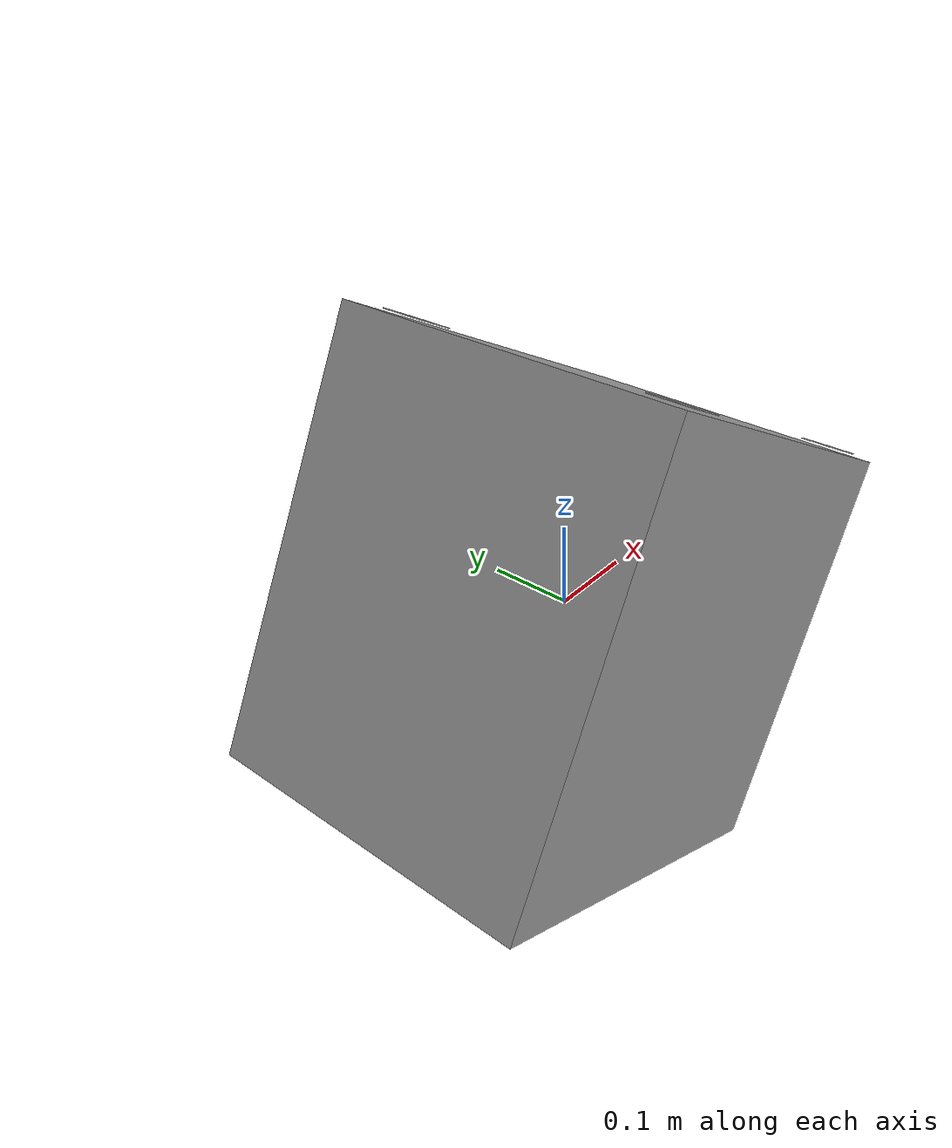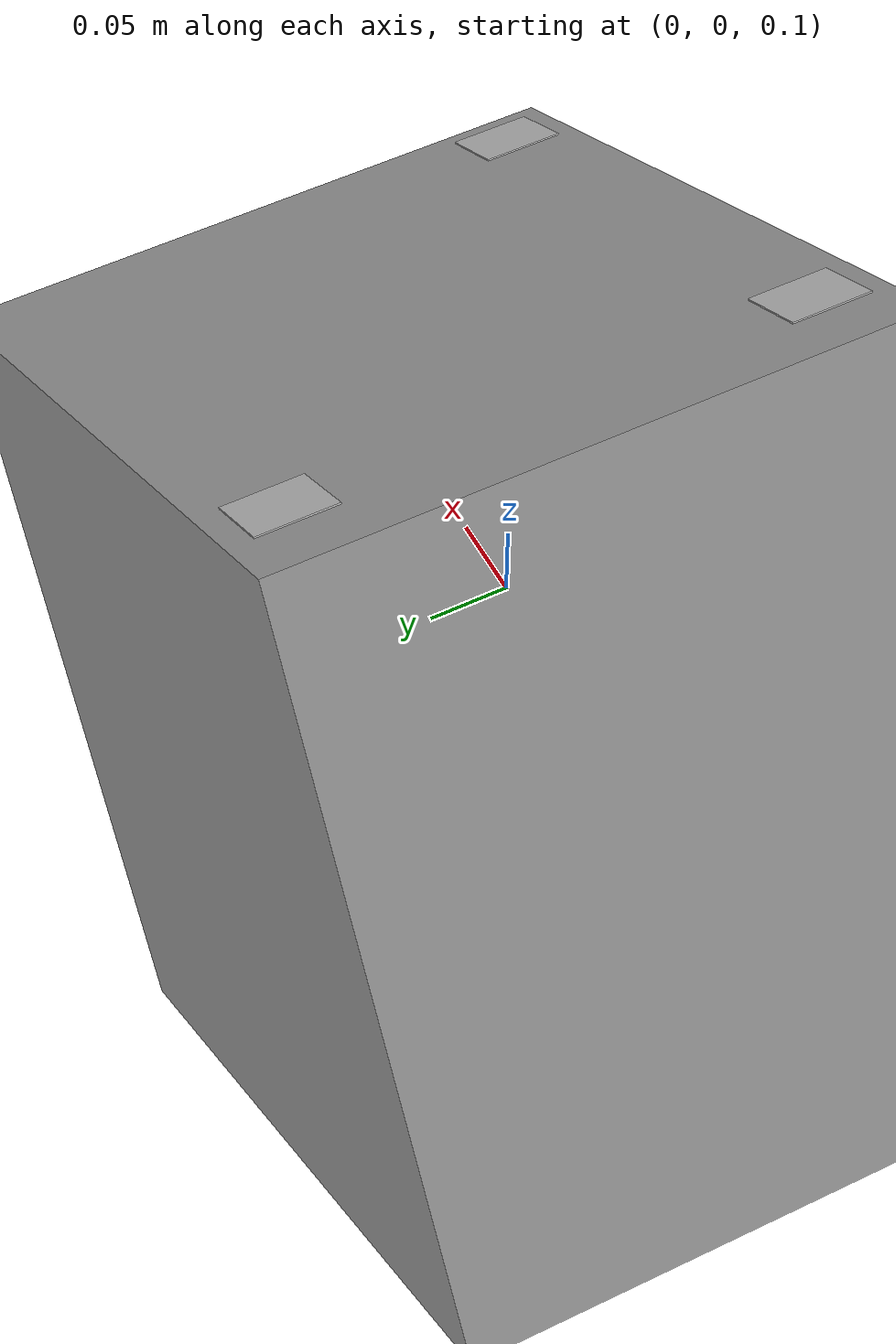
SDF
<?xml version="1.0" ?>
<sdf version="1.6">
  <model name="sloped_control_panel">
    <static>true</static>

    <!-- Sloped control panel body -->
    <link name="panel_body">
      <!-- Pose: x y z roll pitch yaw -->
      <!-- Rotate forward (pitch) to mimic the sloped face -->
      <pose>0 0 0 0 0.5 0</pose>
      <visual name="panel_visual">
        <geometry>
          <box>
            <!-- Size: width, depth, height in meters -->
            <size>0.5 0.4 0.5</size>
          </box>
        </geometry>
        <material>
          <ambient>0.6 0.6 0.6 1</ambient>
        </material>
      </visual>
      <collision name="panel_collision">
        <geometry>
          <box>
            <size>0.5 0.4 0.5</size>
          </box>
        </geometry>
      </collision>
    </link>

    <!-- ArUco Marker 1 - Top Left Corner -->
    <link name="aruco_marker_1">
      <!-- Position on the slanted front face, accounting for the panel's rotation -->
      <pose>-0.04 -0.16 0.31 1.57 0.5 0</pose>
      <visual name="aruco_visual_1">
        <geometry>
          <box>
            <size>0.05 0.001 0.05</size>
          </box>
        </geometry>
        <material>
          <script>
            <uri>model://aruco_marker/materials/scripts/aruco.material</uri>
            <name>Aruco0</name>
          </script>
        </material>
      </visual>
    </link>

    <!-- ArUco Marker 2 - Top Right Corner -->
    <link name="aruco_marker_2">
      <pose>0.3 -0.16 0.125 1.57 0.5 0</pose>
      <visual name="aruco_visual_2">
        <geometry>
          <box>
            <size>0.05 0.001 0.05</size>
          </box>
        </geometry>
        <material>
          <script>
            <uri>model://aruco_marker/materials/scripts/aruco.material</uri>
            <name>Aruco1</name>
          </script>
        </material>
      </visual>
    </link>

    <!-- ArUco Marker 3 - Bottom Center -->
    <link name="aruco_marker_3">
      <pose>-0.04 0.16 0.31 1.57 0.5 0</pose>
      <visual name="aruco_visual_3">
        <geometry>
          <box>
            <size>0.05 0.001 0.05</size>
          </box>
        </geometry>
        <material>
          <script>
            <uri>model://aruco_marker/materials/scripts/aruco.material</uri>
            <name>Aruco2</name>
          </script>
        </material>
      </visual>
    </link>

  </model>
</sdf>
